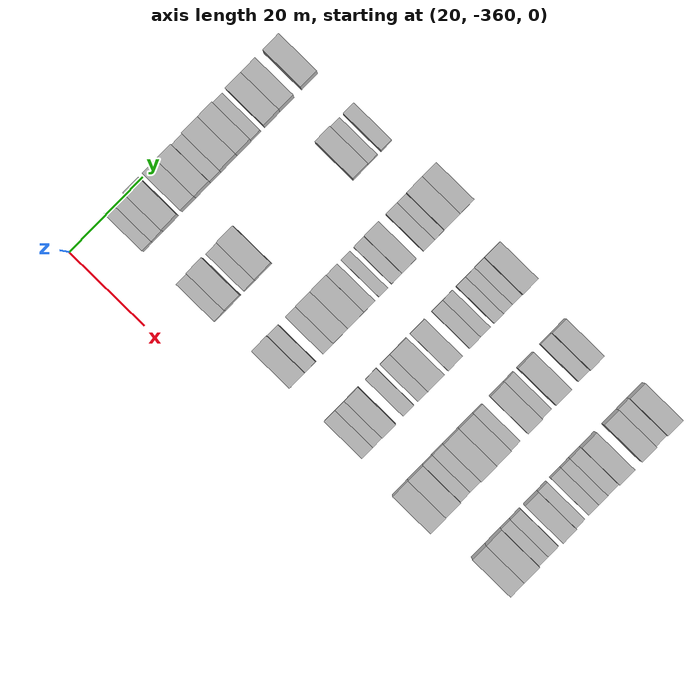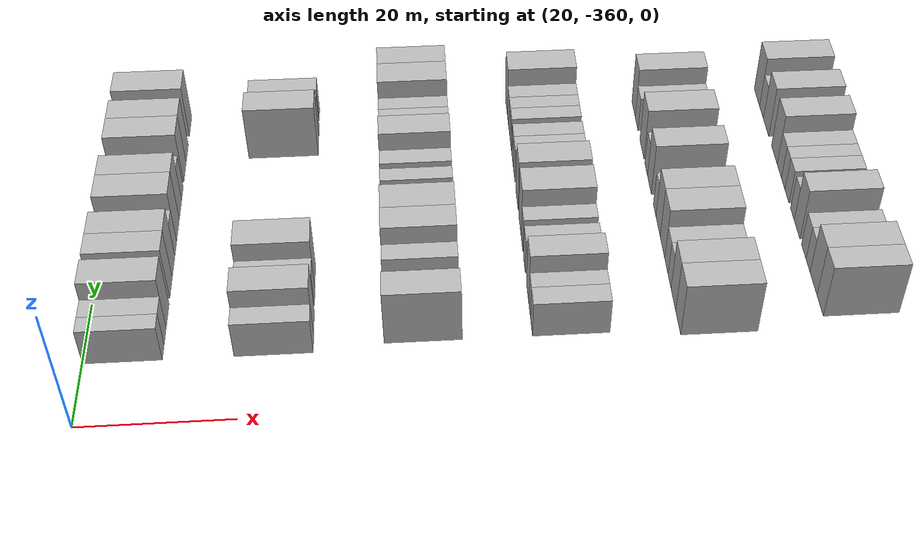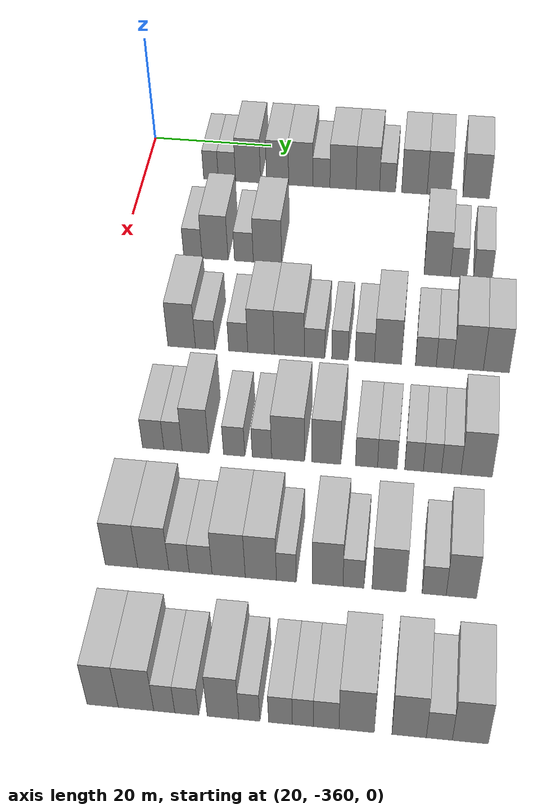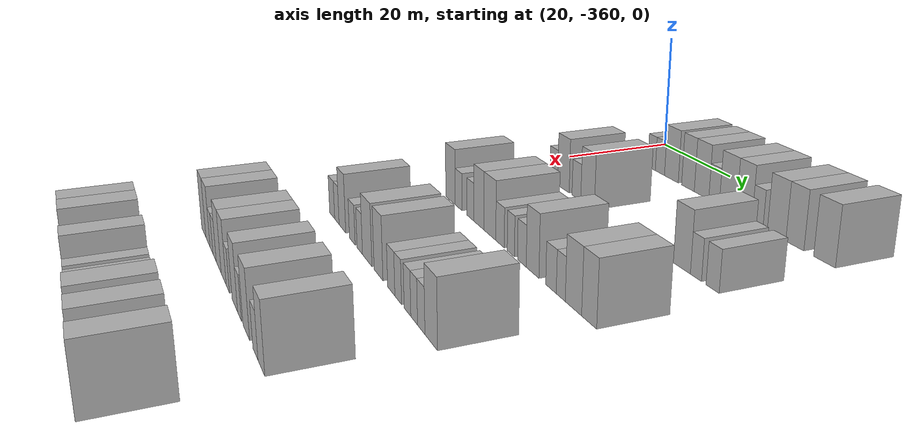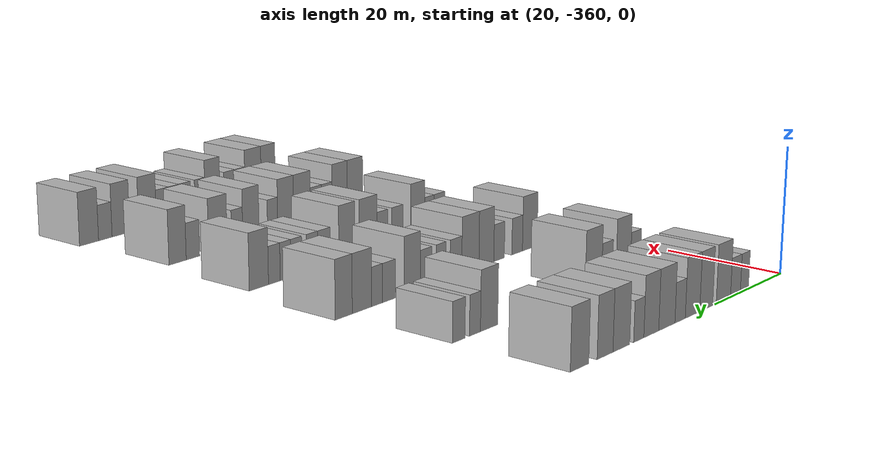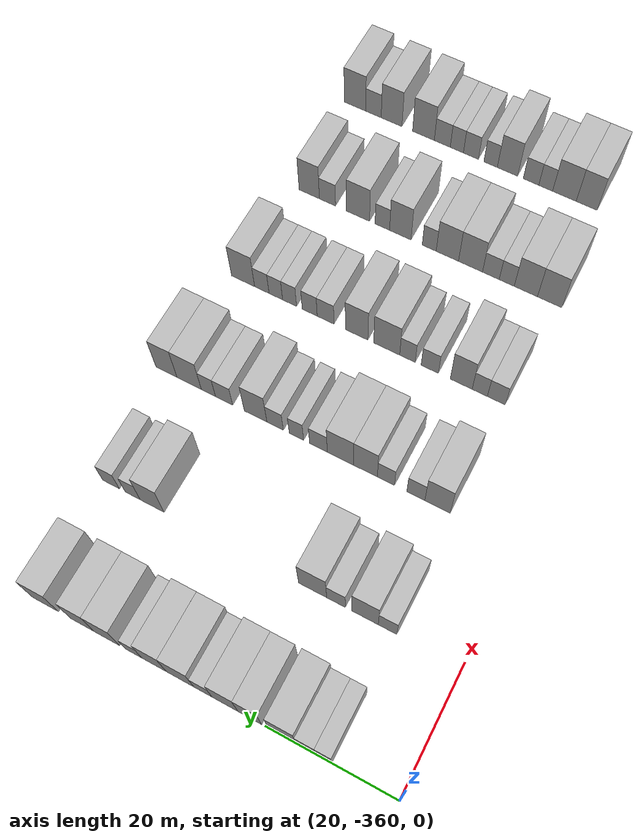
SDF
<sdf version="1.6">
 <world name="default">
  <model name="building_1">
   <static>1</static>
   <pose>25.0000 -348.7715 0 0.000000 0.000000 0.000000</pose>
   <link name="link">
    <pose>0 0 3.00 0 0 0</pose>
    <collision name="collision"><geometry><box><size>10.0000 2.4570 6.0000</size></box></geometry></collision>
    <visual name="visual">
     <cast_shadows>0</cast_shadows>
     <geometry><box><size>10.0000 2.4570 6.0000</size></box></geometry>
     <material>
      <script>
       <uri>model://HANNAS_wall/materials/scripts</uri>
       <uri>model://HANNAS_wall/materials/textures</uri>
       <name>vrc/HANNAS_wall</name>
      </script>
     </material>
    </visual>
   </link>
  </model>
  <model name="building_2">
   <static>1</static>
   <pose>25.0000 -346.0925 0 0.000000 0.000000 0.000000</pose>
   <link name="link">
    <pose>0 0 3.00 0 0 0</pose>
    <collision name="collision"><geometry><box><size>10.0000 2.9010 6.0000</size></box></geometry></collision>
    <visual name="visual">
     <cast_shadows>0</cast_shadows>
     <geometry><box><size>10.0000 2.9010 6.0000</size></box></geometry>
     <material>
      <script>
       <uri>model://HANNAS_wall/materials/scripts</uri>
       <uri>model://HANNAS_wall/materials/textures</uri>
       <name>vrc/HANNAS_wall</name>
      </script>
     </material>
    </visual>
   </link>
  </model>
  <model name="building_3">
   <static>1</static>
   <pose>25.0000 -342.5536 0 0.000000 0.000000 0.000000</pose>
   <link name="link">
    <pose>0 0 4.50 0 0 0</pose>
    <collision name="collision"><geometry><box><size>10.0000 4.1769 9.0000</size></box></geometry></collision>
    <visual name="visual">
     <cast_shadows>0</cast_shadows>
     <geometry><box><size>10.0000 4.1769 9.0000</size></box></geometry>
     <material>
      <script>
       <uri>model://HANNAS_wall/materials/scripts</uri>
       <uri>model://HANNAS_wall/materials/textures</uri>
       <name>vrc/HANNAS_wall</name>
      </script>
     </material>
    </visual>
   </link>
  </model>
  <model name="building_4">
   <static>1</static>
   <pose>25.0000 -337.6333 0 0.000000 0.000000 0.000000</pose>
   <link name="link">
    <pose>0 0 4.50 0 0 0</pose>
    <collision name="collision"><geometry><box><size>10.0000 3.6635 9.0000</size></box></geometry></collision>
    <visual name="visual">
     <cast_shadows>0</cast_shadows>
     <geometry><box><size>10.0000 3.6635 9.0000</size></box></geometry>
     <material>
      <script>
       <uri>model://HANNAS_wall/materials/scripts</uri>
       <uri>model://HANNAS_wall/materials/textures</uri>
       <name>vrc/HANNAS_wall</name>
      </script>
     </material>
    </visual>
   </link>
  </model>
  <model name="building_5">
   <static>1</static>
   <pose>25.0000 -333.7920 0 0.000000 0.000000 0.000000</pose>
   <link name="link">
    <pose>0 0 4.50 0 0 0</pose>
    <collision name="collision"><geometry><box><size>10.0000 4.0192 9.0000</size></box></geometry></collision>
    <visual name="visual">
     <cast_shadows>0</cast_shadows>
     <geometry><box><size>10.0000 4.0192 9.0000</size></box></geometry>
     <material>
      <script>
       <uri>model://HANNAS_wall/materials/scripts</uri>
       <uri>model://HANNAS_wall/materials/textures</uri>
       <name>vrc/HANNAS_wall</name>
      </script>
     </material>
    </visual>
   </link>
  </model>
  <model name="building_6">
   <static>1</static>
   <pose>25.0000 -330.3741 0 0.000000 0.000000 0.000000</pose>
   <link name="link">
    <pose>0 0 3.00 0 0 0</pose>
    <collision name="collision"><geometry><box><size>10.0000 2.8165 6.0000</size></box></geometry></collision>
    <visual name="visual">
     <cast_shadows>0</cast_shadows>
     <geometry><box><size>10.0000 2.8165 6.0000</size></box></geometry>
     <material>
      <script>
       <uri>model://HANNAS_wall/materials/scripts</uri>
       <uri>model://HANNAS_wall/materials/textures</uri>
       <name>vrc/HANNAS_wall</name>
      </script>
     </material>
    </visual>
   </link>
  </model>
  <model name="building_7">
   <static>1</static>
   <pose>25.0000 -326.8023 0 0.000000 0.000000 0.000000</pose>
   <link name="link">
    <pose>0 0 4.50 0 0 0</pose>
    <collision name="collision"><geometry><box><size>10.0000 4.3272 9.0000</size></box></geometry></collision>
    <visual name="visual">
     <cast_shadows>0</cast_shadows>
     <geometry><box><size>10.0000 4.3272 9.0000</size></box></geometry>
     <material>
      <script>
       <uri>model://HANNAS_wall/materials/scripts</uri>
       <uri>model://HANNAS_wall/materials/textures</uri>
       <name>vrc/HANNAS_wall</name>
      </script>
     </material>
    </visual>
   </link>
  </model>
  <model name="building_8">
   <static>1</static>
   <pose>25.0000 -322.7035 0 0.000000 0.000000 0.000000</pose>
   <link name="link">
    <pose>0 0 4.50 0 0 0</pose>
    <collision name="collision"><geometry><box><size>10.0000 3.8703 9.0000</size></box></geometry></collision>
    <visual name="visual">
     <cast_shadows>0</cast_shadows>
     <geometry><box><size>10.0000 3.8703 9.0000</size></box></geometry>
     <material>
      <script>
       <uri>model://HANNAS_wall/materials/scripts</uri>
       <uri>model://HANNAS_wall/materials/textures</uri>
       <name>vrc/HANNAS_wall</name>
      </script>
     </material>
    </visual>
   </link>
  </model>
  <model name="building_9">
   <static>1</static>
   <pose>25.0000 -319.4609 0 0.000000 0.000000 0.000000</pose>
   <link name="link">
    <pose>0 0 3.00 0 0 0</pose>
    <collision name="collision"><geometry><box><size>10.0000 2.6149 6.0000</size></box></geometry></collision>
    <visual name="visual">
     <cast_shadows>0</cast_shadows>
     <geometry><box><size>10.0000 2.6149 6.0000</size></box></geometry>
     <material>
      <script>
       <uri>model://HANNAS_wall/materials/scripts</uri>
       <uri>model://HANNAS_wall/materials/textures</uri>
       <name>vrc/HANNAS_wall</name>
      </script>
     </material>
    </visual>
   </link>
  </model>
  <model name="building_10">
   <static>1</static>
   <pose>25.0000 -315.0740 0 0.000000 0.000000 0.000000</pose>
   <link name="link">
    <pose>0 0 4.50 0 0 0</pose>
    <collision name="collision"><geometry><box><size>10.0000 4.1590 9.0000</size></box></geometry></collision>
    <visual name="visual">
     <cast_shadows>0</cast_shadows>
     <geometry><box><size>10.0000 4.1590 9.0000</size></box></geometry>
     <material>
      <script>
       <uri>model://HANNAS_wall/materials/scripts</uri>
       <uri>model://HANNAS_wall/materials/textures</uri>
       <name>vrc/HANNAS_wall</name>
      </script>
     </material>
    </visual>
   </link>
  </model>
  <model name="building_11">
   <static>1</static>
   <pose>25.0000 -311.0655 0 0.000000 0.000000 0.000000</pose>
   <link name="link">
    <pose>0 0 4.50 0 0 0</pose>
    <collision name="collision"><geometry><box><size>10.0000 3.8581 9.0000</size></box></geometry></collision>
    <visual name="visual">
     <cast_shadows>0</cast_shadows>
     <geometry><box><size>10.0000 3.8581 9.0000</size></box></geometry>
     <material>
      <script>
       <uri>model://HANNAS_wall/materials/scripts</uri>
       <uri>model://HANNAS_wall/materials/textures</uri>
       <name>vrc/HANNAS_wall</name>
      </script>
     </material>
    </visual>
   </link>
  </model>
  <model name="building_12">
   <static>1</static>
   <pose>25.0000 -304.9729 0 0.000000 0.000000 0.000000</pose>
   <link name="link">
    <pose>0 0 4.50 0 0 0</pose>
    <collision name="collision"><geometry><box><size>10.0000 4.3270 9.0000</size></box></geometry></collision>
    <visual name="visual">
     <cast_shadows>0</cast_shadows>
     <geometry><box><size>10.0000 4.3270 9.0000</size></box></geometry>
     <material>
      <script>
       <uri>model://HANNAS_wall/materials/scripts</uri>
       <uri>model://HANNAS_wall/materials/textures</uri>
       <name>vrc/HANNAS_wall</name>
      </script>
     </material>
    </visual>
   </link>
  </model>
  <model name="building_178">
   <static>1</static>
   <pose>44.0000 -348.5646 0 0.000000 0.000000 0.000000</pose>
   <link name="link">
    <pose>0 0 3.00 0 0 0</pose>
    <collision name="collision"><geometry><box><size>10.0000 2.8709 6.0000</size></box></geometry></collision>
    <visual name="visual">
     <cast_shadows>0</cast_shadows>
     <geometry><box><size>10.0000 2.8709 6.0000</size></box></geometry>
     <material>
      <script>
       <uri>model://HANNAS_wall/materials/scripts</uri>
       <uri>model://HANNAS_wall/materials/textures</uri>
       <name>vrc/HANNAS_wall</name>
      </script>
     </material>
    </visual>
   </link>
  </model>
  <model name="building_179">
   <static>1</static>
   <pose>44.0000 -345.0730 0 0.000000 0.000000 0.000000</pose>
   <link name="link">
    <pose>0 0 4.50 0 0 0</pose>
    <collision name="collision"><geometry><box><size>10.0000 4.1123 9.0000</size></box></geometry></collision>
    <visual name="visual">
     <cast_shadows>0</cast_shadows>
     <geometry><box><size>10.0000 4.1123 9.0000</size></box></geometry>
     <material>
      <script>
       <uri>model://HANNAS_wall/materials/scripts</uri>
       <uri>model://HANNAS_wall/materials/textures</uri>
       <name>vrc/HANNAS_wall</name>
      </script>
     </material>
    </visual>
   </link>
  </model>
  <model name="building_180">
   <static>1</static>
   <pose>44.0000 -340.5410 0 0.000000 0.000000 0.000000</pose>
   <link name="link">
    <pose>0 0 3.00 0 0 0</pose>
    <collision name="collision"><geometry><box><size>10.0000 2.9518 6.0000</size></box></geometry></collision>
    <visual name="visual">
     <cast_shadows>0</cast_shadows>
     <geometry><box><size>10.0000 2.9518 6.0000</size></box></geometry>
     <material>
      <script>
       <uri>model://HANNAS_wall/materials/scripts</uri>
       <uri>model://HANNAS_wall/materials/textures</uri>
       <name>vrc/HANNAS_wall</name>
      </script>
     </material>
    </visual>
   </link>
  </model>
  <model name="building_181">
   <static>1</static>
   <pose>44.0000 -336.8423 0 0.000000 0.000000 0.000000</pose>
   <link name="link">
    <pose>0 0 4.50 0 0 0</pose>
    <collision name="collision"><geometry><box><size>10.0000 4.4455 9.0000</size></box></geometry></collision>
    <visual name="visual">
     <cast_shadows>0</cast_shadows>
     <geometry><box><size>10.0000 4.4455 9.0000</size></box></geometry>
     <material>
      <script>
       <uri>model://HANNAS_wall/materials/scripts</uri>
       <uri>model://HANNAS_wall/materials/textures</uri>
       <name>vrc/HANNAS_wall</name>
      </script>
     </material>
    </visual>
   </link>
  </model>
  <model name="building_182">
   <static>1</static>
   <pose>44.0000 -310.5474 0 0.000000 0.000000 0.000000</pose>
   <link name="link">
    <pose>0 0 4.50 0 0 0</pose>
    <collision name="collision"><geometry><box><size>10.0000 4.0482 9.0000</size></box></geometry></collision>
    <visual name="visual">
     <cast_shadows>0</cast_shadows>
     <geometry><box><size>10.0000 4.0482 9.0000</size></box></geometry>
     <material>
      <script>
       <uri>model://HANNAS_wall/materials/scripts</uri>
       <uri>model://HANNAS_wall/materials/textures</uri>
       <name>vrc/HANNAS_wall</name>
      </script>
     </material>
    </visual>
   </link>
  </model>
  <model name="building_183">
   <static>1</static>
   <pose>44.0000 -307.2575 0 0.000000 0.000000 0.000000</pose>
   <link name="link">
    <pose>0 0 3.00 0 0 0</pose>
    <collision name="collision"><geometry><box><size>10.0000 2.5316 6.0000</size></box></geometry></collision>
    <visual name="visual">
     <cast_shadows>0</cast_shadows>
     <geometry><box><size>10.0000 2.5316 6.0000</size></box></geometry>
     <material>
      <script>
       <uri>model://HANNAS_wall/materials/scripts</uri>
       <uri>model://HANNAS_wall/materials/textures</uri>
       <name>vrc/HANNAS_wall</name>
      </script>
     </material>
    </visual>
   </link>
  </model>
  <model name="building_184">
   <static>1</static>
   <pose>44.0000 -303.5639 0 0.000000 0.000000 0.000000</pose>
   <link name="link">
    <pose>0 0 3.00 0 0 0</pose>
    <collision name="collision"><geometry><box><size>10.0000 2.8554 6.0000</size></box></geometry></collision>
    <visual name="visual">
     <cast_shadows>0</cast_shadows>
     <geometry><box><size>10.0000 2.8554 6.0000</size></box></geometry>
     <material>
      <script>
       <uri>model://HANNAS_wall/materials/scripts</uri>
       <uri>model://HANNAS_wall/materials/textures</uri>
       <name>vrc/HANNAS_wall</name>
      </script>
     </material>
    </visual>
   </link>
  </model>
  <model name="building_350">
   <static>1</static>
   <pose>63.0000 -346.9673 0 0.000000 0.000000 0.000000</pose>
   <link name="link">
    <pose>0 0 4.50 0 0 0</pose>
    <collision name="collision"><geometry><box><size>10.0000 4.0655 9.0000</size></box></geometry></collision>
    <visual name="visual">
     <cast_shadows>0</cast_shadows>
     <geometry><box><size>10.0000 4.0655 9.0000</size></box></geometry>
     <material>
      <script>
       <uri>model://HANNAS_wall/materials/scripts</uri>
       <uri>model://HANNAS_wall/materials/textures</uri>
       <name>vrc/HANNAS_wall</name>
      </script>
     </material>
    </visual>
   </link>
  </model>
  <model name="building_351">
   <static>1</static>
   <pose>63.0000 -343.4860 0 0.000000 0.000000 0.000000</pose>
   <link name="link">
    <pose>0 0 3.00 0 0 0</pose>
    <collision name="collision"><geometry><box><size>10.0000 2.8970 6.0000</size></box></geometry></collision>
    <visual name="visual">
     <cast_shadows>0</cast_shadows>
     <geometry><box><size>10.0000 2.8970 6.0000</size></box></geometry>
     <material>
      <script>
       <uri>model://HANNAS_wall/materials/scripts</uri>
       <uri>model://HANNAS_wall/materials/textures</uri>
       <name>vrc/HANNAS_wall</name>
      </script>
     </material>
    </visual>
   </link>
  </model>
  <model name="building_352">
   <static>1</static>
   <pose>63.0000 -338.6362 0 0.000000 0.000000 0.000000</pose>
   <link name="link">
    <pose>0 0 3.00 0 0 0</pose>
    <collision name="collision"><geometry><box><size>10.0000 2.8025 6.0000</size></box></geometry></collision>
    <visual name="visual">
     <cast_shadows>0</cast_shadows>
     <geometry><box><size>10.0000 2.8025 6.0000</size></box></geometry>
     <material>
      <script>
       <uri>model://HANNAS_wall/materials/scripts</uri>
       <uri>model://HANNAS_wall/materials/textures</uri>
       <name>vrc/HANNAS_wall</name>
      </script>
     </material>
    </visual>
   </link>
  </model>
  <model name="building_353">
   <static>1</static>
   <pose>63.0000 -335.2924 0 0.000000 0.000000 0.000000</pose>
   <link name="link">
    <pose>0 0 4.50 0 0 0</pose>
    <collision name="collision"><geometry><box><size>10.0000 3.8851 9.0000</size></box></geometry></collision>
    <visual name="visual">
     <cast_shadows>0</cast_shadows>
     <geometry><box><size>10.0000 3.8851 9.0000</size></box></geometry>
     <material>
      <script>
       <uri>model://HANNAS_wall/materials/scripts</uri>
       <uri>model://HANNAS_wall/materials/textures</uri>
       <name>vrc/HANNAS_wall</name>
      </script>
     </material>
    </visual>
   </link>
  </model>
  <model name="building_354">
   <static>1</static>
   <pose>63.0000 -331.1639 0 0.000000 0.000000 0.000000</pose>
   <link name="link">
    <pose>0 0 4.50 0 0 0</pose>
    <collision name="collision"><geometry><box><size>10.0000 4.3719 9.0000</size></box></geometry></collision>
    <visual name="visual">
     <cast_shadows>0</cast_shadows>
     <geometry><box><size>10.0000 4.3719 9.0000</size></box></geometry>
     <material>
      <script>
       <uri>model://HANNAS_wall/materials/scripts</uri>
       <uri>model://HANNAS_wall/materials/textures</uri>
       <name>vrc/HANNAS_wall</name>
      </script>
     </material>
    </visual>
   </link>
  </model>
  <model name="building_355">
   <static>1</static>
   <pose>63.0000 -327.4923 0 0.000000 0.000000 0.000000</pose>
   <link name="link">
    <pose>0 0 3.00 0 0 0</pose>
    <collision name="collision"><geometry><box><size>10.0000 2.9713 6.0000</size></box></geometry></collision>
    <visual name="visual">
     <cast_shadows>0</cast_shadows>
     <geometry><box><size>10.0000 2.9713 6.0000</size></box></geometry>
     <material>
      <script>
       <uri>model://HANNAS_wall/materials/scripts</uri>
       <uri>model://HANNAS_wall/materials/textures</uri>
       <name>vrc/HANNAS_wall</name>
      </script>
     </material>
    </visual>
   </link>
  </model>
  <model name="building_356">
   <static>1</static>
   <pose>63.0000 -323.7990 0 0.000000 0.000000 0.000000</pose>
   <link name="link">
    <pose>0 0 3.00 0 0 0</pose>
    <collision name="collision"><geometry><box><size>10.0000 2.4152 6.0000</size></box></geometry></collision>
    <visual name="visual">
     <cast_shadows>0</cast_shadows>
     <geometry><box><size>10.0000 2.4152 6.0000</size></box></geometry>
     <material>
      <script>
       <uri>model://HANNAS_wall/materials/scripts</uri>
       <uri>model://HANNAS_wall/materials/textures</uri>
       <name>vrc/HANNAS_wall</name>
      </script>
     </material>
    </visual>
   </link>
  </model>
  <model name="building_357">
   <static>1</static>
   <pose>63.0000 -320.1930 0 0.000000 0.000000 0.000000</pose>
   <link name="link">
    <pose>0 0 3.00 0 0 0</pose>
    <collision name="collision"><geometry><box><size>10.0000 2.7967 6.0000</size></box></geometry></collision>
    <visual name="visual">
     <cast_shadows>0</cast_shadows>
     <geometry><box><size>10.0000 2.7967 6.0000</size></box></geometry>
     <material>
      <script>
       <uri>model://HANNAS_wall/materials/scripts</uri>
       <uri>model://HANNAS_wall/materials/textures</uri>
       <name>vrc/HANNAS_wall</name>
      </script>
     </material>
    </visual>
   </link>
  </model>
  <model name="building_358">
   <static>1</static>
   <pose>63.0000 -316.8509 0 0.000000 0.000000 0.000000</pose>
   <link name="link">
    <pose>0 0 4.50 0 0 0</pose>
    <collision name="collision"><geometry><box><size>10.0000 3.8875 9.0000</size></box></geometry></collision>
    <visual name="visual">
     <cast_shadows>0</cast_shadows>
     <geometry><box><size>10.0000 3.8875 9.0000</size></box></geometry>
     <material>
      <script>
       <uri>model://HANNAS_wall/materials/scripts</uri>
       <uri>model://HANNAS_wall/materials/textures</uri>
       <name>vrc/HANNAS_wall</name>
      </script>
     </material>
    </visual>
   </link>
  </model>
  <model name="building_359">
   <static>1</static>
   <pose>63.0000 -311.4109 0 0.000000 0.000000 0.000000</pose>
   <link name="link">
    <pose>0 0 3.00 0 0 0</pose>
    <collision name="collision"><geometry><box><size>10.0000 2.9926 6.0000</size></box></geometry></collision>
    <visual name="visual">
     <cast_shadows>0</cast_shadows>
     <geometry><box><size>10.0000 2.9926 6.0000</size></box></geometry>
     <material>
      <script>
       <uri>model://HANNAS_wall/materials/scripts</uri>
       <uri>model://HANNAS_wall/materials/textures</uri>
       <name>vrc/HANNAS_wall</name>
      </script>
     </material>
    </visual>
   </link>
  </model>
  <model name="building_360">
   <static>1</static>
   <pose>63.0000 -308.6802 0 0.000000 0.000000 0.000000</pose>
   <link name="link">
    <pose>0 0 3.00 0 0 0</pose>
    <collision name="collision"><geometry><box><size>10.0000 2.4686 6.0000</size></box></geometry></collision>
    <visual name="visual">
     <cast_shadows>0</cast_shadows>
     <geometry><box><size>10.0000 2.4686 6.0000</size></box></geometry>
     <material>
      <script>
       <uri>model://HANNAS_wall/materials/scripts</uri>
       <uri>model://HANNAS_wall/materials/textures</uri>
       <name>vrc/HANNAS_wall</name>
      </script>
     </material>
    </visual>
   </link>
  </model>
  <model name="building_361">
   <static>1</static>
   <pose>63.0000 -305.3089 0 0.000000 0.000000 0.000000</pose>
   <link name="link">
    <pose>0 0 4.50 0 0 0</pose>
    <collision name="collision"><geometry><box><size>10.0000 4.2741 9.0000</size></box></geometry></collision>
    <visual name="visual">
     <cast_shadows>0</cast_shadows>
     <geometry><box><size>10.0000 4.2741 9.0000</size></box></geometry>
     <material>
      <script>
       <uri>model://HANNAS_wall/materials/scripts</uri>
       <uri>model://HANNAS_wall/materials/textures</uri>
       <name>vrc/HANNAS_wall</name>
      </script>
     </material>
    </visual>
   </link>
  </model>
  <model name="building_362">
   <static>1</static>
   <pose>63.0000 -301.3077 0 0.000000 0.000000 0.000000</pose>
   <link name="link">
    <pose>0 0 4.50 0 0 0</pose>
    <collision name="collision"><geometry><box><size>10.0000 3.7283 9.0000</size></box></geometry></collision>
    <visual name="visual">
     <cast_shadows>0</cast_shadows>
     <geometry><box><size>10.0000 3.7283 9.0000</size></box></geometry>
     <material>
      <script>
       <uri>model://HANNAS_wall/materials/scripts</uri>
       <uri>model://HANNAS_wall/materials/textures</uri>
       <name>vrc/HANNAS_wall</name>
      </script>
     </material>
    </visual>
   </link>
  </model>
  <model name="building_520">
   <static>1</static>
   <pose>82.0000 -347.5254 0 0.000000 0.000000 0.000000</pose>
   <link name="link">
    <pose>0 0 3.00 0 0 0</pose>
    <collision name="collision"><geometry><box><size>10.0000 2.9492 6.0000</size></box></geometry></collision>
    <visual name="visual">
     <cast_shadows>0</cast_shadows>
     <geometry><box><size>10.0000 2.9492 6.0000</size></box></geometry>
     <material>
      <script>
       <uri>model://HANNAS_wall/materials/scripts</uri>
       <uri>model://HANNAS_wall/materials/textures</uri>
       <name>vrc/HANNAS_wall</name>
      </script>
     </material>
    </visual>
   </link>
  </model>
  <model name="building_521">
   <static>1</static>
   <pose>82.0000 -344.7907 0 0.000000 0.000000 0.000000</pose>
   <link name="link">
    <pose>0 0 3.00 0 0 0</pose>
    <collision name="collision"><geometry><box><size>10.0000 2.5203 6.0000</size></box></geometry></collision>
    <visual name="visual">
     <cast_shadows>0</cast_shadows>
     <geometry><box><size>10.0000 2.5203 6.0000</size></box></geometry>
     <material>
      <script>
       <uri>model://HANNAS_wall/materials/scripts</uri>
       <uri>model://HANNAS_wall/materials/textures</uri>
       <name>vrc/HANNAS_wall</name>
      </script>
     </material>
    </visual>
   </link>
  </model>
  <model name="building_522">
   <static>1</static>
   <pose>82.0000 -341.7010 0 0.000000 0.000000 0.000000</pose>
   <link name="link">
    <pose>0 0 4.50 0 0 0</pose>
    <collision name="collision"><geometry><box><size>10.0000 3.6589 9.0000</size></box></geometry></collision>
    <visual name="visual">
     <cast_shadows>0</cast_shadows>
     <geometry><box><size>10.0000 3.6589 9.0000</size></box></geometry>
     <material>
      <script>
       <uri>model://HANNAS_wall/materials/scripts</uri>
       <uri>model://HANNAS_wall/materials/textures</uri>
       <name>vrc/HANNAS_wall</name>
      </script>
     </material>
    </visual>
   </link>
  </model>
  <model name="building_523">
   <static>1</static>
   <pose>82.0000 -336.4157 0 0.000000 0.000000 0.000000</pose>
   <link name="link">
    <pose>0 0 3.00 0 0 0</pose>
    <collision name="collision"><geometry><box><size>10.0000 2.9117 6.0000</size></box></geometry></collision>
    <visual name="visual">
     <cast_shadows>0</cast_shadows>
     <geometry><box><size>10.0000 2.9117 6.0000</size></box></geometry>
     <material>
      <script>
       <uri>model://HANNAS_wall/materials/scripts</uri>
       <uri>model://HANNAS_wall/materials/textures</uri>
       <name>vrc/HANNAS_wall</name>
      </script>
     </material>
    </visual>
   </link>
  </model>
  <model name="building_524">
   <static>1</static>
   <pose>82.0000 -332.6332 0 0.000000 0.000000 0.000000</pose>
   <link name="link">
    <pose>0 0 3.00 0 0 0</pose>
    <collision name="collision"><geometry><box><size>10.0000 2.6534 6.0000</size></box></geometry></collision>
    <visual name="visual">
     <cast_shadows>0</cast_shadows>
     <geometry><box><size>10.0000 2.6534 6.0000</size></box></geometry>
     <material>
      <script>
       <uri>model://HANNAS_wall/materials/scripts</uri>
       <uri>model://HANNAS_wall/materials/textures</uri>
       <name>vrc/HANNAS_wall</name>
      </script>
     </material>
    </visual>
   </link>
  </model>
  <model name="building_525">
   <static>1</static>
   <pose>82.0000 -329.0770 0 0.000000 0.000000 0.000000</pose>
   <link name="link">
    <pose>0 0 4.50 0 0 0</pose>
    <collision name="collision"><geometry><box><size>10.0000 4.4590 9.0000</size></box></geometry></collision>
    <visual name="visual">
     <cast_shadows>0</cast_shadows>
     <geometry><box><size>10.0000 4.4590 9.0000</size></box></geometry>
     <material>
      <script>
       <uri>model://HANNAS_wall/materials/scripts</uri>
       <uri>model://HANNAS_wall/materials/textures</uri>
       <name>vrc/HANNAS_wall</name>
      </script>
     </material>
    </visual>
   </link>
  </model>
  <model name="building_526">
   <static>1</static>
   <pose>82.0000 -323.9009 0 0.000000 0.000000 0.000000</pose>
   <link name="link">
    <pose>0 0 4.50 0 0 0</pose>
    <collision name="collision"><geometry><box><size>10.0000 3.8931 9.0000</size></box></geometry></collision>
    <visual name="visual">
     <cast_shadows>0</cast_shadows>
     <geometry><box><size>10.0000 3.8931 9.0000</size></box></geometry>
     <material>
      <script>
       <uri>model://HANNAS_wall/materials/scripts</uri>
       <uri>model://HANNAS_wall/materials/textures</uri>
       <name>vrc/HANNAS_wall</name>
      </script>
     </material>
    </visual>
   </link>
  </model>
  <model name="building_527">
   <static>1</static>
   <pose>82.0000 -318.4743 0 0.000000 0.000000 0.000000</pose>
   <link name="link">
    <pose>0 0 3.00 0 0 0</pose>
    <collision name="collision"><geometry><box><size>10.0000 2.9602 6.0000</size></box></geometry></collision>
    <visual name="visual">
     <cast_shadows>0</cast_shadows>
     <geometry><box><size>10.0000 2.9602 6.0000</size></box></geometry>
     <material>
      <script>
       <uri>model://HANNAS_wall/materials/scripts</uri>
       <uri>model://HANNAS_wall/materials/textures</uri>
       <name>vrc/HANNAS_wall</name>
      </script>
     </material>
    </visual>
   </link>
  </model>
  <model name="building_528">
   <static>1</static>
   <pose>82.0000 -315.6713 0 0.000000 0.000000 0.000000</pose>
   <link name="link">
    <pose>0 0 3.00 0 0 0</pose>
    <collision name="collision"><geometry><box><size>10.0000 2.6457 6.0000</size></box></geometry></collision>
    <visual name="visual">
     <cast_shadows>0</cast_shadows>
     <geometry><box><size>10.0000 2.6457 6.0000</size></box></geometry>
     <material>
      <script>
       <uri>model://HANNAS_wall/materials/scripts</uri>
       <uri>model://HANNAS_wall/materials/textures</uri>
       <name>vrc/HANNAS_wall</name>
      </script>
     </material>
    </visual>
   </link>
  </model>
  <model name="building_529">
   <static>1</static>
   <pose>82.0000 -312.1016 0 0.000000 0.000000 0.000000</pose>
   <link name="link">
    <pose>0 0 3.00 0 0 0</pose>
    <collision name="collision"><geometry><box><size>10.0000 2.4938 6.0000</size></box></geometry></collision>
    <visual name="visual">
     <cast_shadows>0</cast_shadows>
     <geometry><box><size>10.0000 2.4938 6.0000</size></box></geometry>
     <material>
      <script>
       <uri>model://HANNAS_wall/materials/scripts</uri>
       <uri>model://HANNAS_wall/materials/textures</uri>
       <name>vrc/HANNAS_wall</name>
      </script>
     </material>
    </visual>
   </link>
  </model>
  <model name="building_530">
   <static>1</static>
   <pose>82.0000 -309.6417 0 0.000000 0.000000 0.000000</pose>
   <link name="link">
    <pose>0 0 3.00 0 0 0</pose>
    <collision name="collision"><geometry><box><size>10.0000 2.4260 6.0000</size></box></geometry></collision>
    <visual name="visual">
     <cast_shadows>0</cast_shadows>
     <geometry><box><size>10.0000 2.4260 6.0000</size></box></geometry>
     <material>
      <script>
       <uri>model://HANNAS_wall/materials/scripts</uri>
       <uri>model://HANNAS_wall/materials/textures</uri>
       <name>vrc/HANNAS_wall</name>
      </script>
     </material>
    </visual>
   </link>
  </model>
  <model name="building_531">
   <static>1</static>
   <pose>82.0000 -307.1314 0 0.000000 0.000000 0.000000</pose>
   <link name="link">
    <pose>0 0 3.00 0 0 0</pose>
    <collision name="collision"><geometry><box><size>10.0000 2.5947 6.0000</size></box></geometry></collision>
    <visual name="visual">
     <cast_shadows>0</cast_shadows>
     <geometry><box><size>10.0000 2.5947 6.0000</size></box></geometry>
     <material>
      <script>
       <uri>model://HANNAS_wall/materials/scripts</uri>
       <uri>model://HANNAS_wall/materials/textures</uri>
       <name>vrc/HANNAS_wall</name>
      </script>
     </material>
    </visual>
   </link>
  </model>
  <model name="building_532">
   <static>1</static>
   <pose>82.0000 -303.7445 0 0.000000 0.000000 0.000000</pose>
   <link name="link">
    <pose>0 0 4.50 0 0 0</pose>
    <collision name="collision"><geometry><box><size>10.0000 4.1791 9.0000</size></box></geometry></collision>
    <visual name="visual">
     <cast_shadows>0</cast_shadows>
     <geometry><box><size>10.0000 4.1791 9.0000</size></box></geometry>
     <material>
      <script>
       <uri>model://HANNAS_wall/materials/scripts</uri>
       <uri>model://HANNAS_wall/materials/textures</uri>
       <name>vrc/HANNAS_wall</name>
      </script>
     </material>
    </visual>
   </link>
  </model>
  <model name="building_696">
   <static>1</static>
   <pose>101.0000 -347.9283 0 0.000000 0.000000 0.000000</pose>
   <link name="link">
    <pose>0 0 4.50 0 0 0</pose>
    <collision name="collision"><geometry><box><size>10.0000 4.1434 9.0000</size></box></geometry></collision>
    <visual name="visual">
     <cast_shadows>0</cast_shadows>
     <geometry><box><size>10.0000 4.1434 9.0000</size></box></geometry>
     <material>
      <script>
       <uri>model://HANNAS_wall/materials/scripts</uri>
       <uri>model://HANNAS_wall/materials/textures</uri>
       <name>vrc/HANNAS_wall</name>
      </script>
     </material>
    </visual>
   </link>
  </model>
  <model name="building_697">
   <static>1</static>
   <pose>101.0000 -343.8702 0 0.000000 0.000000 0.000000</pose>
   <link name="link">
    <pose>0 0 4.50 0 0 0</pose>
    <collision name="collision"><geometry><box><size>10.0000 3.9726 9.0000</size></box></geometry></collision>
    <visual name="visual">
     <cast_shadows>0</cast_shadows>
     <geometry><box><size>10.0000 3.9726 9.0000</size></box></geometry>
     <material>
      <script>
       <uri>model://HANNAS_wall/materials/scripts</uri>
       <uri>model://HANNAS_wall/materials/textures</uri>
       <name>vrc/HANNAS_wall</name>
      </script>
     </material>
    </visual>
   </link>
  </model>
  <model name="building_698">
   <static>1</static>
   <pose>101.0000 -340.5883 0 0.000000 0.000000 0.000000</pose>
   <link name="link">
    <pose>0 0 3.00 0 0 0</pose>
    <collision name="collision"><geometry><box><size>10.0000 2.5913 6.0000</size></box></geometry></collision>
    <visual name="visual">
     <cast_shadows>0</cast_shadows>
     <geometry><box><size>10.0000 2.5913 6.0000</size></box></geometry>
     <material>
      <script>
       <uri>model://HANNAS_wall/materials/scripts</uri>
       <uri>model://HANNAS_wall/materials/textures</uri>
       <name>vrc/HANNAS_wall</name>
      </script>
     </material>
    </visual>
   </link>
  </model>
  <model name="building_699">
   <static>1</static>
   <pose>101.0000 -337.8425 0 0.000000 0.000000 0.000000</pose>
   <link name="link">
    <pose>0 0 3.00 0 0 0</pose>
    <collision name="collision"><geometry><box><size>10.0000 2.9002 6.0000</size></box></geometry></collision>
    <visual name="visual">
     <cast_shadows>0</cast_shadows>
     <geometry><box><size>10.0000 2.9002 6.0000</size></box></geometry>
     <material>
      <script>
       <uri>model://HANNAS_wall/materials/scripts</uri>
       <uri>model://HANNAS_wall/materials/textures</uri>
       <name>vrc/HANNAS_wall</name>
      </script>
     </material>
    </visual>
   </link>
  </model>
  <model name="building_700">
   <static>1</static>
   <pose>101.0000 -334.2916 0 0.000000 0.000000 0.000000</pose>
   <link name="link">
    <pose>0 0 4.50 0 0 0</pose>
    <collision name="collision"><geometry><box><size>10.0000 4.2017 9.0000</size></box></geometry></collision>
    <visual name="visual">
     <cast_shadows>0</cast_shadows>
     <geometry><box><size>10.0000 4.2017 9.0000</size></box></geometry>
     <material>
      <script>
       <uri>model://HANNAS_wall/materials/scripts</uri>
       <uri>model://HANNAS_wall/materials/textures</uri>
       <name>vrc/HANNAS_wall</name>
      </script>
     </material>
    </visual>
   </link>
  </model>
  <model name="building_701">
   <static>1</static>
   <pose>101.0000 -330.2248 0 0.000000 0.000000 0.000000</pose>
   <link name="link">
    <pose>0 0 4.50 0 0 0</pose>
    <collision name="collision"><geometry><box><size>10.0000 3.9319 9.0000</size></box></geometry></collision>
    <visual name="visual">
     <cast_shadows>0</cast_shadows>
     <geometry><box><size>10.0000 3.9319 9.0000</size></box></geometry>
     <material>
      <script>
       <uri>model://HANNAS_wall/materials/scripts</uri>
       <uri>model://HANNAS_wall/materials/textures</uri>
       <name>vrc/HANNAS_wall</name>
      </script>
     </material>
    </visual>
   </link>
  </model>
  <model name="building_702">
   <static>1</static>
   <pose>101.0000 -327.0203 0 0.000000 0.000000 0.000000</pose>
   <link name="link">
    <pose>0 0 3.00 0 0 0</pose>
    <collision name="collision"><geometry><box><size>10.0000 2.4769 6.0000</size></box></geometry></collision>
    <visual name="visual">
     <cast_shadows>0</cast_shadows>
     <geometry><box><size>10.0000 2.4769 6.0000</size></box></geometry>
     <material>
      <script>
       <uri>model://HANNAS_wall/materials/scripts</uri>
       <uri>model://HANNAS_wall/materials/textures</uri>
       <name>vrc/HANNAS_wall</name>
      </script>
     </material>
    </visual>
   </link>
  </model>
  <model name="building_703">
   <static>1</static>
   <pose>101.0000 -321.8544 0 0.000000 0.000000 0.000000</pose>
   <link name="link">
    <pose>0 0 4.50 0 0 0</pose>
    <collision name="collision"><geometry><box><size>10.0000 3.8550 9.0000</size></box></geometry></collision>
    <visual name="visual">
     <cast_shadows>0</cast_shadows>
     <geometry><box><size>10.0000 3.8550 9.0000</size></box></geometry>
     <material>
      <script>
       <uri>model://HANNAS_wall/materials/scripts</uri>
       <uri>model://HANNAS_wall/materials/textures</uri>
       <name>vrc/HANNAS_wall</name>
      </script>
     </material>
    </visual>
   </link>
  </model>
  <model name="building_704">
   <static>1</static>
   <pose>101.0000 -318.6186 0 0.000000 0.000000 0.000000</pose>
   <link name="link">
    <pose>0 0 3.00 0 0 0</pose>
    <collision name="collision"><geometry><box><size>10.0000 2.6167 6.0000</size></box></geometry></collision>
    <visual name="visual">
     <cast_shadows>0</cast_shadows>
     <geometry><box><size>10.0000 2.6167 6.0000</size></box></geometry>
     <material>
      <script>
       <uri>model://HANNAS_wall/materials/scripts</uri>
       <uri>model://HANNAS_wall/materials/textures</uri>
       <name>vrc/HANNAS_wall</name>
      </script>
     </material>
    </visual>
   </link>
  </model>
  <model name="building_705">
   <static>1</static>
   <pose>101.0000 -314.2032 0 0.000000 0.000000 0.000000</pose>
   <link name="link">
    <pose>0 0 4.50 0 0 0</pose>
    <collision name="collision"><geometry><box><size>10.0000 4.2142 9.0000</size></box></geometry></collision>
    <visual name="visual">
     <cast_shadows>0</cast_shadows>
     <geometry><box><size>10.0000 4.2142 9.0000</size></box></geometry>
     <material>
      <script>
       <uri>model://HANNAS_wall/materials/scripts</uri>
       <uri>model://HANNAS_wall/materials/textures</uri>
       <name>vrc/HANNAS_wall</name>
      </script>
     </material>
    </visual>
   </link>
  </model>
  <model name="building_706">
   <static>1</static>
   <pose>101.0000 -308.6047 0 0.000000 0.000000 0.000000</pose>
   <link name="link">
    <pose>0 0 3.00 0 0 0</pose>
    <collision name="collision"><geometry><box><size>10.0000 2.9827 6.0000</size></box></geometry></collision>
    <visual name="visual">
     <cast_shadows>0</cast_shadows>
     <geometry><box><size>10.0000 2.9827 6.0000</size></box></geometry>
     <material>
      <script>
       <uri>model://HANNAS_wall/materials/scripts</uri>
       <uri>model://HANNAS_wall/materials/textures</uri>
       <name>vrc/HANNAS_wall</name>
      </script>
     </material>
    </visual>
   </link>
  </model>
  <model name="building_707">
   <static>1</static>
   <pose>101.0000 -305.2366 0 0.000000 0.000000 0.000000</pose>
   <link name="link">
    <pose>0 0 4.50 0 0 0</pose>
    <collision name="collision"><geometry><box><size>10.0000 3.7536 9.0000</size></box></geometry></collision>
    <visual name="visual">
     <cast_shadows>0</cast_shadows>
     <geometry><box><size>10.0000 3.7536 9.0000</size></box></geometry>
     <material>
      <script>
       <uri>model://HANNAS_wall/materials/scripts</uri>
       <uri>model://HANNAS_wall/materials/textures</uri>
       <name>vrc/HANNAS_wall</name>
      </script>
     </material>
    </visual>
   </link>
  </model>
  <model name="building_878">
   <static>1</static>
   <pose>120.0000 -346.1617 0 0.000000 0.000000 0.000000</pose>
   <link name="link">
    <pose>0 0 4.50 0 0 0</pose>
    <collision name="collision"><geometry><box><size>10.0000 3.6766 9.0000</size></box></geometry></collision>
    <visual name="visual">
     <cast_shadows>0</cast_shadows>
     <geometry><box><size>10.0000 3.6766 9.0000</size></box></geometry>
     <material>
      <script>
       <uri>model://HANNAS_wall/materials/scripts</uri>
       <uri>model://HANNAS_wall/materials/textures</uri>
       <name>vrc/HANNAS_wall</name>
      </script>
     </material>
    </visual>
   </link>
  </model>
  <model name="building_879">
   <static>1</static>
   <pose>120.0000 -342.2376 0 0.000000 0.000000 0.000000</pose>
   <link name="link">
    <pose>0 0 4.50 0 0 0</pose>
    <collision name="collision"><geometry><box><size>10.0000 4.1716 9.0000</size></box></geometry></collision>
    <visual name="visual">
     <cast_shadows>0</cast_shadows>
     <geometry><box><size>10.0000 4.1716 9.0000</size></box></geometry>
     <material>
      <script>
       <uri>model://HANNAS_wall/materials/scripts</uri>
       <uri>model://HANNAS_wall/materials/textures</uri>
       <name>vrc/HANNAS_wall</name>
      </script>
     </material>
    </visual>
   </link>
  </model>
  <model name="building_880">
   <static>1</static>
   <pose>120.0000 -338.9204 0 0.000000 0.000000 0.000000</pose>
   <link name="link">
    <pose>0 0 3.00 0 0 0</pose>
    <collision name="collision"><geometry><box><size>10.0000 2.4626 6.0000</size></box></geometry></collision>
    <visual name="visual">
     <cast_shadows>0</cast_shadows>
     <geometry><box><size>10.0000 2.4626 6.0000</size></box></geometry>
     <material>
      <script>
       <uri>model://HANNAS_wall/materials/scripts</uri>
       <uri>model://HANNAS_wall/materials/textures</uri>
       <name>vrc/HANNAS_wall</name>
      </script>
     </material>
    </visual>
   </link>
  </model>
  <model name="building_881">
   <static>1</static>
   <pose>120.0000 -336.2933 0 0.000000 0.000000 0.000000</pose>
   <link name="link">
    <pose>0 0 3.00 0 0 0</pose>
    <collision name="collision"><geometry><box><size>10.0000 2.7917 6.0000</size></box></geometry></collision>
    <visual name="visual">
     <cast_shadows>0</cast_shadows>
     <geometry><box><size>10.0000 2.7917 6.0000</size></box></geometry>
     <material>
      <script>
       <uri>model://HANNAS_wall/materials/scripts</uri>
       <uri>model://HANNAS_wall/materials/textures</uri>
       <name>vrc/HANNAS_wall</name>
      </script>
     </material>
    </visual>
   </link>
  </model>
  <model name="building_882">
   <static>1</static>
   <pose>120.0000 -332.0617 0 0.000000 0.000000 0.000000</pose>
   <link name="link">
    <pose>0 0 4.50 0 0 0</pose>
    <collision name="collision"><geometry><box><size>10.0000 3.6716 9.0000</size></box></geometry></collision>
    <visual name="visual">
     <cast_shadows>0</cast_shadows>
     <geometry><box><size>10.0000 3.6716 9.0000</size></box></geometry>
     <material>
      <script>
       <uri>model://HANNAS_wall/materials/scripts</uri>
       <uri>model://HANNAS_wall/materials/textures</uri>
       <name>vrc/HANNAS_wall</name>
      </script>
     </material>
    </visual>
   </link>
  </model>
  <model name="building_883">
   <static>1</static>
   <pose>120.0000 -329.0023 0 0.000000 0.000000 0.000000</pose>
   <link name="link">
    <pose>0 0 3.00 0 0 0</pose>
    <collision name="collision"><geometry><box><size>10.0000 2.4471 6.0000</size></box></geometry></collision>
    <visual name="visual">
     <cast_shadows>0</cast_shadows>
     <geometry><box><size>10.0000 2.4471 6.0000</size></box></geometry>
     <material>
      <script>
       <uri>model://HANNAS_wall/materials/scripts</uri>
       <uri>model://HANNAS_wall/materials/textures</uri>
       <name>vrc/HANNAS_wall</name>
      </script>
     </material>
    </visual>
   </link>
  </model>
  <model name="building_884">
   <static>1</static>
   <pose>120.0000 -325.4059 0 0.000000 0.000000 0.000000</pose>
   <link name="link">
    <pose>0 0 3.00 0 0 0</pose>
    <collision name="collision"><geometry><box><size>10.0000 2.7457 6.0000</size></box></geometry></collision>
    <visual name="visual">
     <cast_shadows>0</cast_shadows>
     <geometry><box><size>10.0000 2.7457 6.0000</size></box></geometry>
     <material>
      <script>
       <uri>model://HANNAS_wall/materials/scripts</uri>
       <uri>model://HANNAS_wall/materials/textures</uri>
       <name>vrc/HANNAS_wall</name>
      </script>
     </material>
    </visual>
   </link>
  </model>
  <model name="building_885">
   <static>1</static>
   <pose>120.0000 -322.8207 0 0.000000 0.000000 0.000000</pose>
   <link name="link">
    <pose>0 0 3.00 0 0 0</pose>
    <collision name="collision"><geometry><box><size>10.0000 2.4247 6.0000</size></box></geometry></collision>
    <visual name="visual">
     <cast_shadows>0</cast_shadows>
     <geometry><box><size>10.0000 2.4247 6.0000</size></box></geometry>
     <material>
      <script>
       <uri>model://HANNAS_wall/materials/scripts</uri>
       <uri>model://HANNAS_wall/materials/textures</uri>
       <name>vrc/HANNAS_wall</name>
      </script>
     </material>
    </visual>
   </link>
  </model>
  <model name="building_886">
   <static>1</static>
   <pose>120.0000 -320.1369 0 0.000000 0.000000 0.000000</pose>
   <link name="link">
    <pose>0 0 3.00 0 0 0</pose>
    <collision name="collision"><geometry><box><size>10.0000 2.9429 6.0000</size></box></geometry></collision>
    <visual name="visual">
     <cast_shadows>0</cast_shadows>
     <geometry><box><size>10.0000 2.9429 6.0000</size></box></geometry>
     <material>
      <script>
       <uri>model://HANNAS_wall/materials/scripts</uri>
       <uri>model://HANNAS_wall/materials/textures</uri>
       <name>vrc/HANNAS_wall</name>
      </script>
     </material>
    </visual>
   </link>
  </model>
  <model name="building_887">
   <static>1</static>
   <pose>120.0000 -316.6394 0 0.000000 0.000000 0.000000</pose>
   <link name="link">
    <pose>0 0 4.50 0 0 0</pose>
    <collision name="collision"><geometry><box><size>10.0000 4.0520 9.0000</size></box></geometry></collision>
    <visual name="visual">
     <cast_shadows>0</cast_shadows>
     <geometry><box><size>10.0000 4.0520 9.0000</size></box></geometry>
     <material>
      <script>
       <uri>model://HANNAS_wall/materials/scripts</uri>
       <uri>model://HANNAS_wall/materials/textures</uri>
       <name>vrc/HANNAS_wall</name>
      </script>
     </material>
    </visual>
   </link>
  </model>
  <model name="building_888">
   <static>1</static>
   <pose>120.0000 -310.6518 0 0.000000 0.000000 0.000000</pose>
   <link name="link">
    <pose>0 0 4.50 0 0 0</pose>
    <collision name="collision"><geometry><box><size>10.0000 3.9231 9.0000</size></box></geometry></collision>
    <visual name="visual">
     <cast_shadows>0</cast_shadows>
     <geometry><box><size>10.0000 3.9231 9.0000</size></box></geometry>
     <material>
      <script>
       <uri>model://HANNAS_wall/materials/scripts</uri>
       <uri>model://HANNAS_wall/materials/textures</uri>
       <name>vrc/HANNAS_wall</name>
      </script>
     </material>
    </visual>
   </link>
  </model>
  <model name="building_889">
   <static>1</static>
   <pose>120.0000 -307.2116 0 0.000000 0.000000 0.000000</pose>
   <link name="link">
    <pose>0 0 3.00 0 0 0</pose>
    <collision name="collision"><geometry><box><size>10.0000 2.9574 6.0000</size></box></geometry></collision>
    <visual name="visual">
     <cast_shadows>0</cast_shadows>
     <geometry><box><size>10.0000 2.9574 6.0000</size></box></geometry>
     <material>
      <script>
       <uri>model://HANNAS_wall/materials/scripts</uri>
       <uri>model://HANNAS_wall/materials/textures</uri>
       <name>vrc/HANNAS_wall</name>
      </script>
     </material>
    </visual>
   </link>
  </model>
  <model name="building_890">
   <static>1</static>
   <pose>120.0000 -303.6948 0 0.000000 0.000000 0.000000</pose>
   <link name="link">
    <pose>0 0 4.50 0 0 0</pose>
    <collision name="collision"><geometry><box><size>10.0000 4.0760 9.0000</size></box></geometry></collision>
    <visual name="visual">
     <cast_shadows>0</cast_shadows>
     <geometry><box><size>10.0000 4.0760 9.0000</size></box></geometry>
     <material>
      <script>
       <uri>model://HANNAS_wall/materials/scripts</uri>
       <uri>model://HANNAS_wall/materials/textures</uri>
       <name>vrc/HANNAS_wall</name>
      </script>
     </material>
    </visual>
   </link>
  </model>
 </world>
</sdf>
